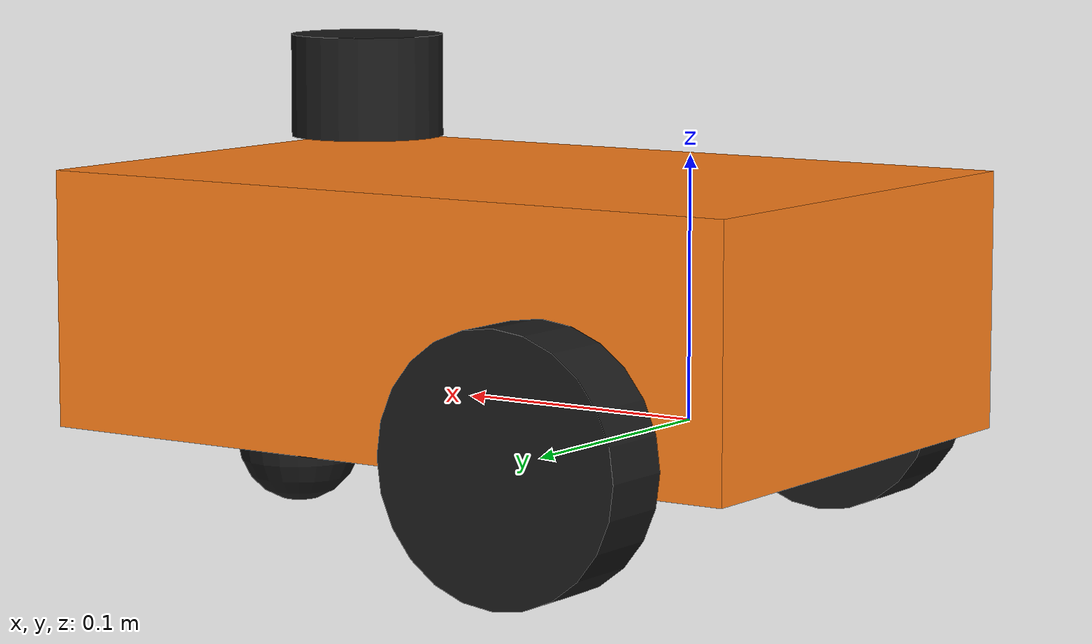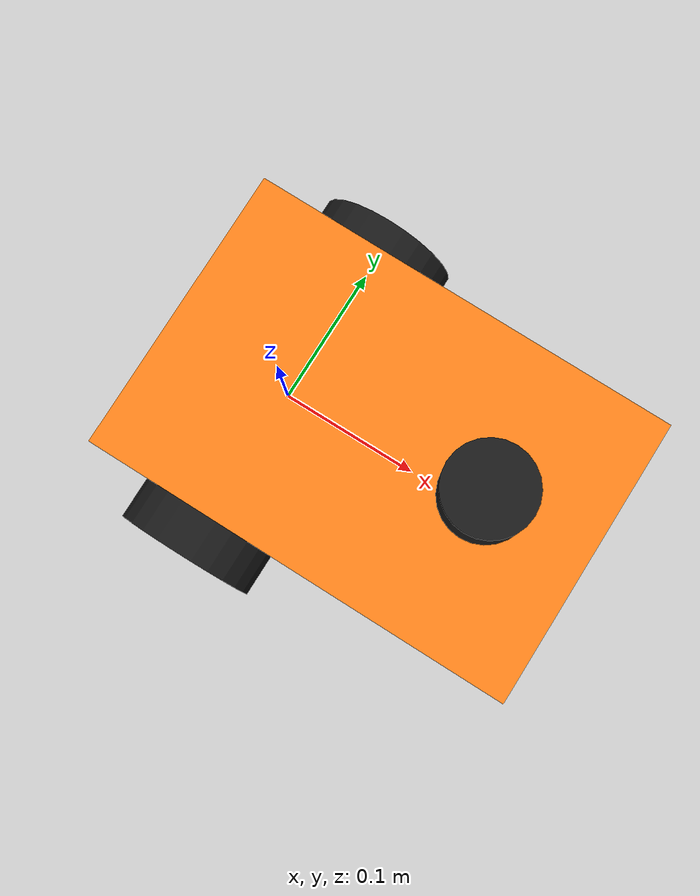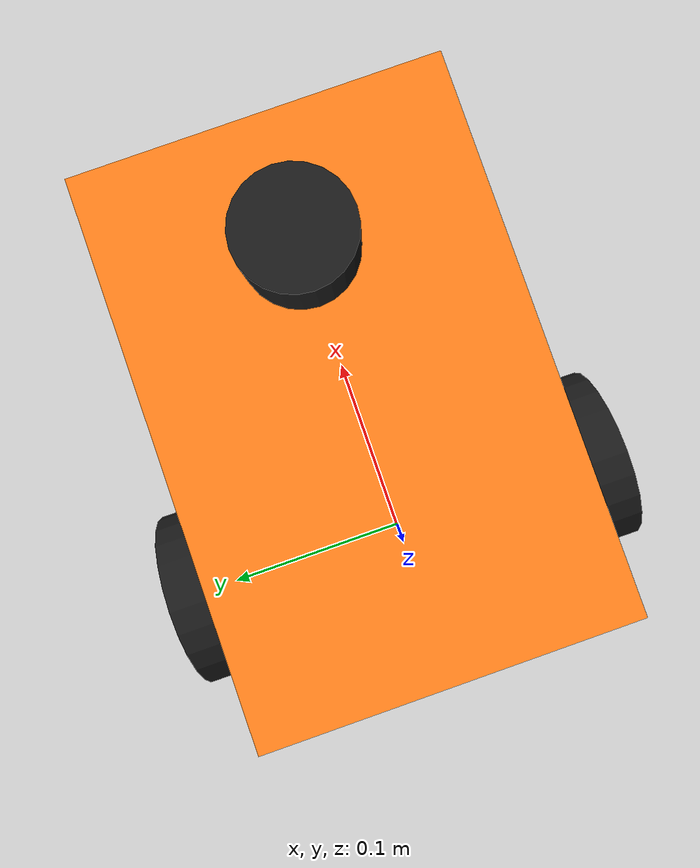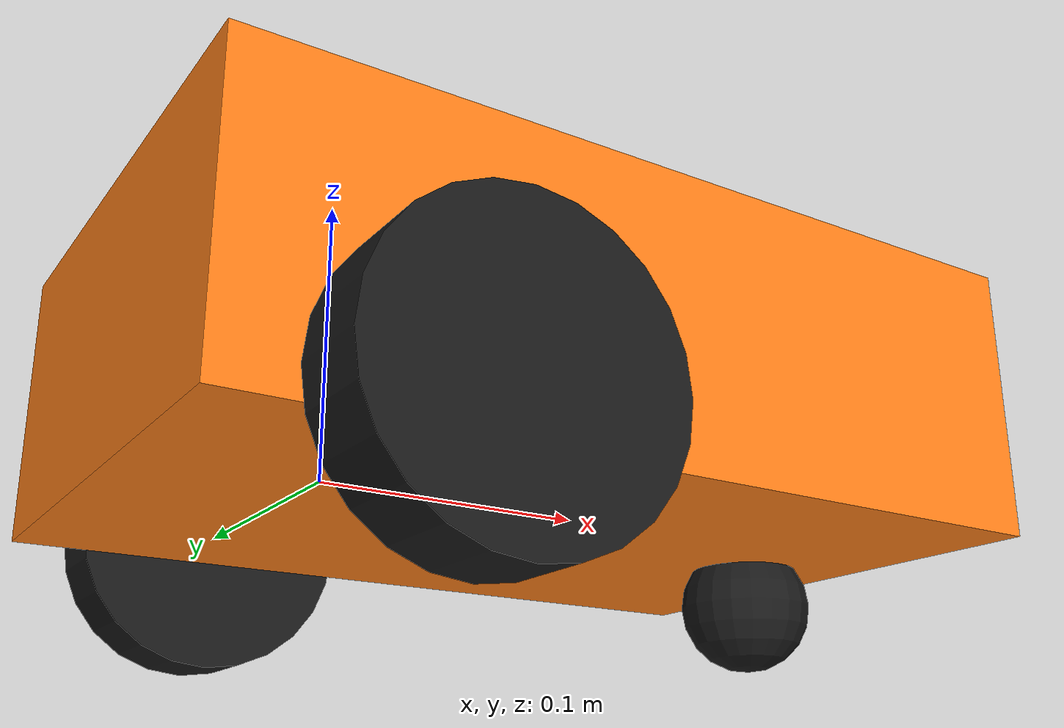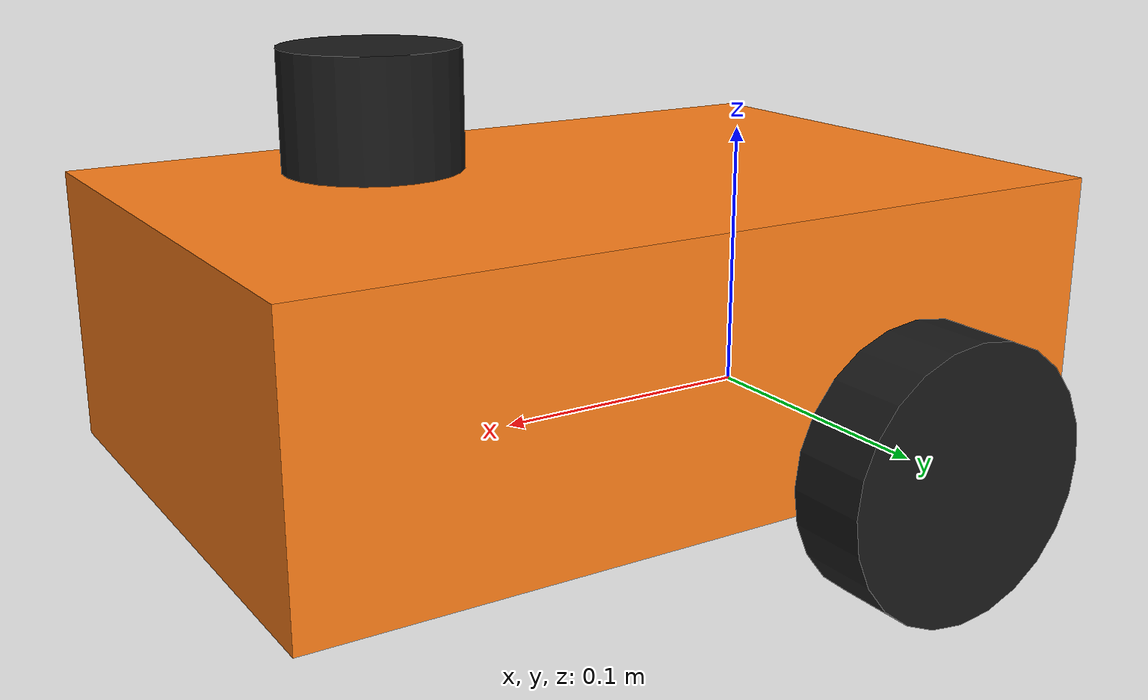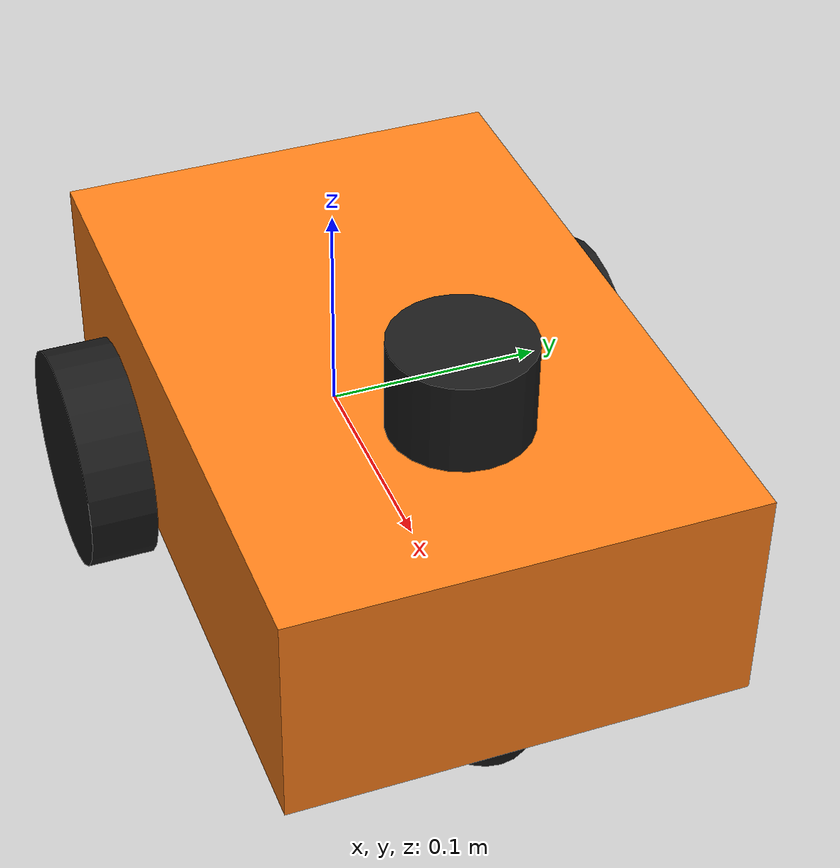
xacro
<?xml version="1.0"?>
<robot name="my_robot" xmlns:xacro="http://www.ros.org/wiki/xacro">

  <xacro:include filename="inertial_macros.xacro"/>

  <!-- Dimensions (m) et masses (kg) -->
  <xacro:property name="chassis_length" value="0.30"/>
  <xacro:property name="chassis_width" value="0.20"/>
  <xacro:property name="chassis_height" value="0.10"/>
  <xacro:property name="wheel_radius" value="0.05"/>
  <xacro:property name="wheel_width" value="0.03"/>
  <xacro:property name="wheel_offset_x" value="0.075"/>
  <xacro:property name="wheel_offset_z" value="0.01"/>

  <material name="orange"><color rgba="1.0 0.5 0.1 1.0"/></material>
  <material name="noir"><color rgba="0.1 0.1 0.1 1.0"/></material>

  <!-- base_link : le repère du robot, au milieu de l'essieu -->
  <link name="base_link"/>

  <joint name="chassis_joint" type="fixed">
    <parent link="base_link"/>
    <child link="chassis"/>
    <origin xyz="${-wheel_offset_x} 0 ${-wheel_offset_z}"/>
  </joint>

  <link name="chassis">
    <visual>
      <origin xyz="${chassis_length/2} 0 ${chassis_height/2}"/>
      <geometry>
        <box size="${chassis_length} ${chassis_width} ${chassis_height}"/>
      </geometry>
      <material name="orange"/>
    </visual>
    <collision>
      <origin xyz="${chassis_length/2} 0 ${chassis_height/2}"/>
      <geometry>
        <box size="${chassis_length} ${chassis_width} ${chassis_height}"/>
      </geometry>
    </collision>
    <xacro:inertial_box mass="0.5" x="${chassis_length}" y="${chassis_width}" z="${chassis_height}">
      <origin xyz="${chassis_length/2} 0 ${chassis_height/2}" rpy="0 0 0"/>
    </xacro:inertial_box>
  </link>

  <!-- Une macro pour les deux roues : seuls le nom et le côté changent -->
  <xacro:macro name="wheel" params="side y">
    <joint name="${side}_wheel_joint" type="continuous">
      <parent link="base_link"/>
      <child link="${side}_wheel"/>
      <origin xyz="0 ${y} 0" rpy="${-pi/2} 0 0"/>
      <axis xyz="0 0 1"/>
    </joint>

    <link name="${side}_wheel">
      <visual>
        <geometry>
          <cylinder radius="${wheel_radius}" length="${wheel_width}"/>
        </geometry>
        <material name="noir"/>
      </visual>
      <collision>
        <geometry>
          <cylinder radius="${wheel_radius}" length="${wheel_width}"/>
        </geometry>
      </collision>
      <xacro:inertial_cylinder mass="0.1" length="${wheel_width}" radius="${wheel_radius}">
        <origin xyz="0 0 0" rpy="0 0 0"/>
      </xacro:inertial_cylinder>
    </link>
  </xacro:macro>

  <xacro:wheel side="left" y="${chassis_width/2 + wheel_width/2}"/>
  <xacro:wheel side="right" y="${-(chassis_width/2 + wheel_width/2)}"/>

  <!-- Roulette libre à l'arrière -->
  <joint name="caster_wheel_joint" type="fixed">
    <parent link="chassis"/>
    <child link="caster_wheel"/>
    <origin xyz="${chassis_length - 0.04} 0 ${-wheel_radius/2 + wheel_offset_z}"/>
  </joint>

  <link name="caster_wheel">
    <visual>
      <geometry>
        <sphere radius="${wheel_radius/2}"/>
      </geometry>
      <material name="noir"/>
    </visual>
    <collision>
      <geometry>
        <sphere radius="${wheel_radius/2}"/>
      </geometry>
    </collision>
    <xacro:inertial_sphere mass="0.05" radius="${wheel_radius/2}">
      <origin xyz="0 0 0" rpy="0 0 0"/>
    </xacro:inertial_sphere>
  </link>

  <!-- Laser : 15 cm devant et 12 cm au-dessus de base_link (comme au module TF2) -->
  <joint name="laser_joint" type="fixed">
    <parent link="base_link"/>
    <child link="laser"/>
    <origin xyz="0.15 0 0.12"/>
  </joint>

  <link name="laser">
    <visual>
      <geometry>
        <cylinder radius="0.03" length="0.04"/>
      </geometry>
      <material name="noir"/>
    </visual>
    <collision>
      <geometry>
        <cylinder radius="0.03" length="0.04"/>
      </geometry>
    </collision>
    <xacro:inertial_cylinder mass="0.05" length="0.04" radius="0.03">
      <origin xyz="0 0 0" rpy="0 0 0"/>
    </xacro:inertial_cylinder>
  </link>

  <!-- Ce que seul Gazebo lit : frottements, plugins, capteur (après les propriétés qu'il utilise) -->
  <xacro:include filename="my_robot.gazebo.xacro"/>

</robot>

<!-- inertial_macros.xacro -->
<robot xmlns:xacro="http://www.ros.org/wiki/xacro">

  <!-- Matrices d'inertie des formes simples (corps homogènes) -->
  <xacro:macro name="inertial_box" params="mass x y z *origin">
    <inertial>
      <xacro:insert_block name="origin"/>
      <mass value="${mass}"/>
      <inertia ixx="${mass * (y*y + z*z) / 12}" ixy="0" ixz="0"
               iyy="${mass * (x*x + z*z) / 12}" iyz="0"
               izz="${mass * (x*x + y*y) / 12}"/>
    </inertial>
  </xacro:macro>

  <xacro:macro name="inertial_cylinder" params="mass length radius *origin">
    <inertial>
      <xacro:insert_block name="origin"/>
      <mass value="${mass}"/>
      <inertia ixx="${mass * (3*radius*radius + length*length) / 12}" ixy="0" ixz="0"
               iyy="${mass * (3*radius*radius + length*length) / 12}" iyz="0"
               izz="${mass * radius*radius / 2}"/>
    </inertial>
  </xacro:macro>

  <xacro:macro name="inertial_sphere" params="mass radius *origin">
    <inertial>
      <xacro:insert_block name="origin"/>
      <mass value="${mass}"/>
      <inertia ixx="${2 * mass * radius*radius / 5}" ixy="0" ixz="0"
               iyy="${2 * mass * radius*radius / 5}" iyz="0"
               izz="${2 * mass * radius*radius / 5}"/>
    </inertial>
  </xacro:macro>

</robot>
